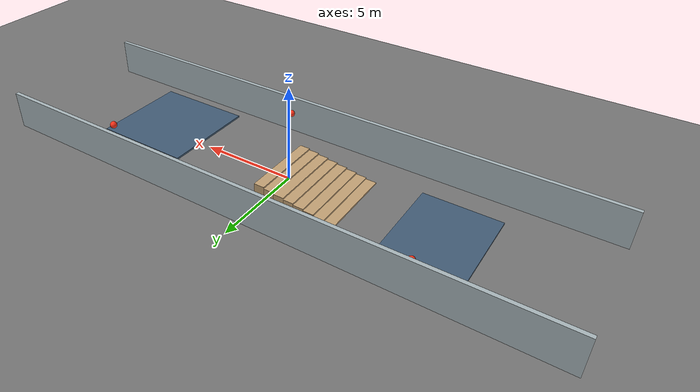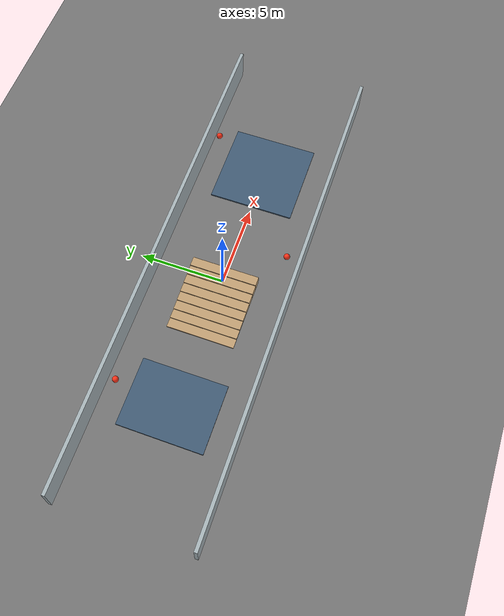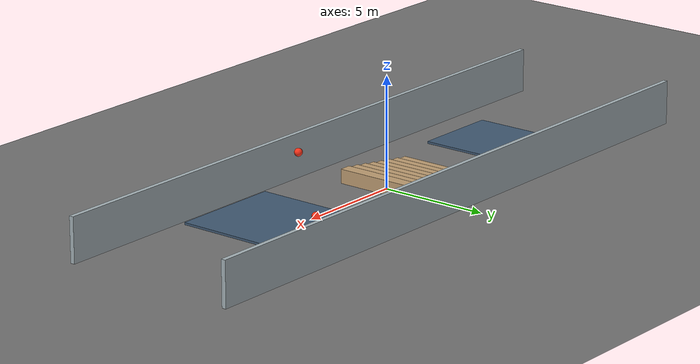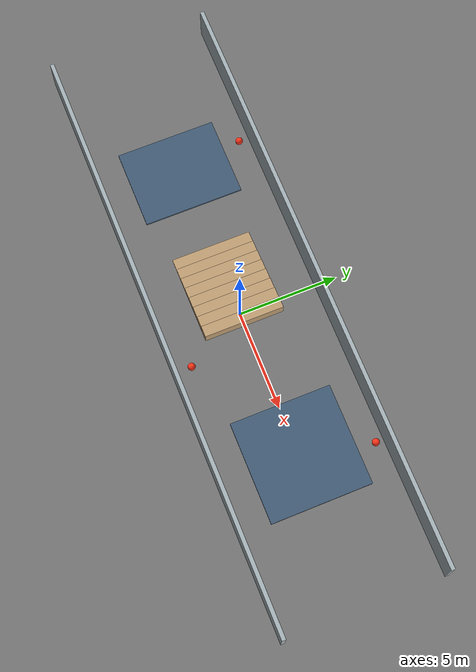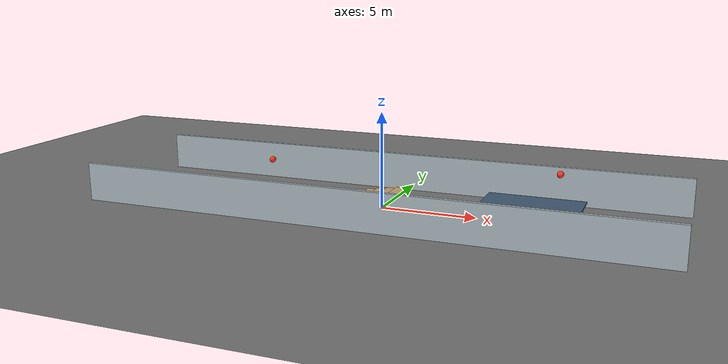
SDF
<sdf version='1.7'>
  <world name='inspection_stairs'>
    <light name='sun' type='directional'>
      <cast_shadows>1</cast_shadows>
      <pose>0 0 10 0 0 0</pose>
      <diffuse>0.8 0.8 0.8 1</diffuse>
      <specular>0.2 0.2 0.2 1</specular>
      <attenuation>
        <range>1000</range>
        <constant>0.9</constant>
        <linear>0.01</linear>
        <quadratic>0.001</quadratic>
      </attenuation>
      <direction>-0.4 0.2 -0.9</direction>
    </light>

    <model name='ground_plane'>
      <static>1</static>
      <link name='link'>
        <collision name='collision'>
          <geometry>
            <plane>
              <normal>0 0 1</normal>
              <size>60 30</size>
            </plane>
          </geometry>
          <surface>
            <friction><ode><mu>100</mu><mu2>80</mu2></ode></friction>
          </surface>
        </collision>
        <visual name='visual'>
          <geometry>
            <plane>
              <normal>0 0 1</normal>
              <size>60 30</size>
            </plane>
          </geometry>
          <material>
            <ambient>0.45 0.45 0.45 1</ambient>
            <diffuse>0.45 0.45 0.45 1</diffuse>
          </material>
        </visual>
      </link>
    </model>

    <model name='inspection_wall_left'>
      <static>1</static>
      <pose>0 4.0 1.0 0 0 0</pose>
      <link name='link'>
        <collision name='collision'><geometry><box><size>30 0.2 2.0</size></box></geometry></collision>
        <visual name='visual'><geometry><box><size>30 0.2 2.0</size></box></geometry><material><ambient>0.65 0.70 0.72 1</ambient><diffuse>0.65 0.70 0.72 1</diffuse></material></visual>
      </link>
    </model>

    <model name='inspection_wall_right'>
      <static>1</static>
      <pose>0 -4.0 1.0 0 0 0</pose>
      <link name='link'>
        <collision name='collision'><geometry><box><size>30 0.2 2.0</size></box></geometry></collision>
        <visual name='visual'><geometry><box><size>30 0.2 2.0</size></box></geometry><material><ambient>0.65 0.70 0.72 1</ambient><diffuse>0.65 0.70 0.72 1</diffuse></material></visual>
      </link>
    </model>

    <model name='inspection_platform_low'>
      <static>1</static>
      <pose>-8 0 0.05 0 0 0</pose>
      <link name='link'>
        <collision name='collision'><geometry><box><size>4 5 0.1</size></box></geometry></collision>
        <visual name='visual'><geometry><box><size>4 5 0.1</size></box></geometry><material><ambient>0.25 0.35 0.45 1</ambient><diffuse>0.25 0.35 0.45 1</diffuse></material></visual>
      </link>
    </model>

    <model name='inspection_platform_high'>
      <static>1</static>
      <pose>7.5 0 0.65 0 0 0</pose>
      <link name='link'>
        <collision name='collision'><geometry><box><size>5 5 0.1</size></box></geometry></collision>
        <visual name='visual'><geometry><box><size>5 5 0.1</size></box></geometry><material><ambient>0.25 0.35 0.45 1</ambient><diffuse>0.25 0.35 0.45 1</diffuse></material></visual>
      </link>
    </model>

    <!-- 上楼台阶，每级 8cm，高度适合先做四足仿真调试。 -->
    <model name='stairs_up'>
      <static>1</static>
      <link name='link'>
        <collision name='step_1_c'><pose>-3.5 0 0.04 0 0 0</pose><geometry><box><size>0.55 4.0 0.08</size></box></geometry></collision>
        <visual name='step_1_v'><pose>-3.5 0 0.04 0 0 0</pose><geometry><box><size>0.55 4.0 0.08</size></box></geometry><material><ambient>0.75 0.62 0.45 1</ambient><diffuse>0.75 0.62 0.45 1</diffuse></material></visual>
        <collision name='step_2_c'><pose>-2.95 0 0.08 0 0 0</pose><geometry><box><size>0.55 4.0 0.16</size></box></geometry></collision>
        <visual name='step_2_v'><pose>-2.95 0 0.08 0 0 0</pose><geometry><box><size>0.55 4.0 0.16</size></box></geometry><material><ambient>0.75 0.62 0.45 1</ambient><diffuse>0.75 0.62 0.45 1</diffuse></material></visual>
        <collision name='step_3_c'><pose>-2.4 0 0.12 0 0 0</pose><geometry><box><size>0.55 4.0 0.24</size></box></geometry></collision>
        <visual name='step_3_v'><pose>-2.4 0 0.12 0 0 0</pose><geometry><box><size>0.55 4.0 0.24</size></box></geometry><material><ambient>0.75 0.62 0.45 1</ambient><diffuse>0.75 0.62 0.45 1</diffuse></material></visual>
        <collision name='step_4_c'><pose>-1.85 0 0.16 0 0 0</pose><geometry><box><size>0.55 4.0 0.32</size></box></geometry></collision>
        <visual name='step_4_v'><pose>-1.85 0 0.16 0 0 0</pose><geometry><box><size>0.55 4.0 0.32</size></box></geometry><material><ambient>0.75 0.62 0.45 1</ambient><diffuse>0.75 0.62 0.45 1</diffuse></material></visual>
        <collision name='step_5_c'><pose>-1.3 0 0.20 0 0 0</pose><geometry><box><size>0.55 4.0 0.40</size></box></geometry></collision>
        <visual name='step_5_v'><pose>-1.3 0 0.20 0 0 0</pose><geometry><box><size>0.55 4.0 0.40</size></box></geometry><material><ambient>0.75 0.62 0.45 1</ambient><diffuse>0.75 0.62 0.45 1</diffuse></material></visual>
        <collision name='step_6_c'><pose>-0.75 0 0.24 0 0 0</pose><geometry><box><size>0.55 4.0 0.48</size></box></geometry></collision>
        <visual name='step_6_v'><pose>-0.75 0 0.24 0 0 0</pose><geometry><box><size>0.55 4.0 0.48</size></box></geometry><material><ambient>0.75 0.62 0.45 1</ambient><diffuse>0.75 0.62 0.45 1</diffuse></material></visual>
        <collision name='step_7_c'><pose>-0.2 0 0.28 0 0 0</pose><geometry><box><size>0.55 4.0 0.56</size></box></geometry></collision>
        <visual name='step_7_v'><pose>-0.2 0 0.28 0 0 0</pose><geometry><box><size>0.55 4.0 0.56</size></box></geometry><material><ambient>0.75 0.62 0.45 1</ambient><diffuse>0.75 0.62 0.45 1</diffuse></material></visual>
        <collision name='step_8_c'><pose>0.35 0 0.32 0 0 0</pose><geometry><box><size>0.55 4.0 0.64</size></box></geometry></collision>
        <visual name='step_8_v'><pose>0.35 0 0.32 0 0 0</pose><geometry><box><size>0.55 4.0 0.64</size></box></geometry><material><ambient>0.75 0.62 0.45 1</ambient><diffuse>0.75 0.62 0.45 1</diffuse></material></visual>
      </link>
    </model>

    <model name='inspection_targets'>
      <static>1</static>
      <link name='link'>
        <visual name='target_1'><pose>-8 3.2 1.2 0 0 0</pose><geometry><sphere><radius>0.18</radius></sphere></geometry><material><ambient>1 0.2 0.1 1</ambient><diffuse>1 0.2 0.1 1</diffuse></material></visual>
        <visual name='target_2'><pose>2.0 -3.2 1.5 0 0 0</pose><geometry><sphere><radius>0.18</radius></sphere></geometry><material><ambient>1 0.2 0.1 1</ambient><diffuse>1 0.2 0.1 1</diffuse></material></visual>
        <visual name='target_3'><pose>8.5 3.2 1.8 0 0 0</pose><geometry><sphere><radius>0.18</radius></sphere></geometry><material><ambient>1 0.2 0.1 1</ambient><diffuse>1 0.2 0.1 1</diffuse></material></visual>
      </link>
    </model>

    <gravity>0 0 -9.8</gravity>
    <physics type='ode'>
      <max_step_size>0.001</max_step_size>
      <real_time_factor>1</real_time_factor>
      <real_time_update_rate>1000</real_time_update_rate>
    </physics>
    <scene>
      <ambient>0.45 0.45 0.45 1</ambient>
      <background>0.70 0.76 0.82 1</background>
      <shadows>1</shadows>
    </scene>
    <gui fullscreen='0'>
      <camera name='user_camera'>
        <pose>7 -9 5 0 0.55 2.35</pose>
        <view_controller>orbit</view_controller>
        <projection_type>perspective</projection_type>
      </camera>
    </gui>
  </world>
</sdf>
